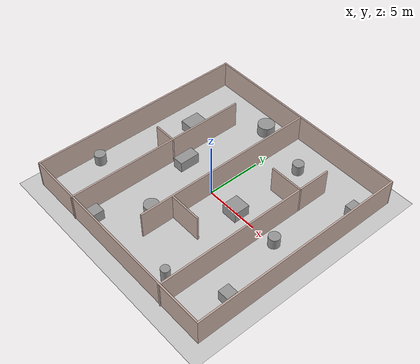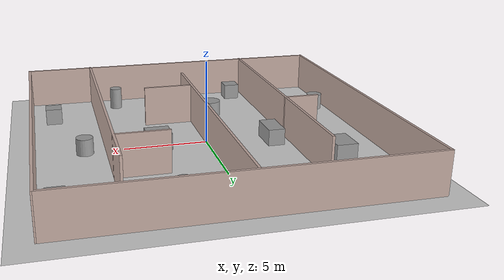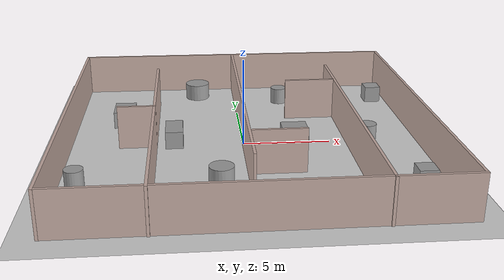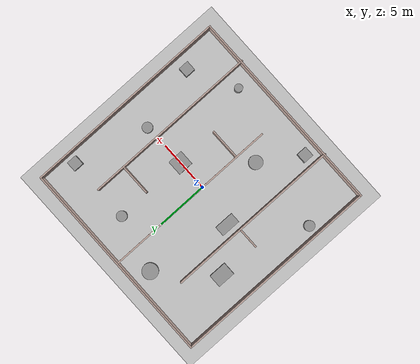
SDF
<sdf version="1.7">
 <world name="default">
  <light name="sun" type="directional">
   <pose>0 0 10 0 -0 0</pose>
   <diffuse>0.8 0.8 0.8 1</diffuse>
   <specular>0.2 0.2 0.2 1</specular>
   <attenuation>
    <range>1000</range>
    <constant>0.9</constant>
    <linear>0.01</linear>
    <quadratic>0.001</quadratic>
   </attenuation>
   <direction>-0.5 0.1 -0.9</direction>
   <spot><inner_angle>0</inner_angle><outer_angle>0</outer_angle><falloff>0</falloff></spot>
  </light>
  <model name="ground_plane">
   <static>1</static>
   <link name="link">
    <collision name="collision">
     <geometry><plane><normal>0 0 1</normal><size>100 100</size></plane></geometry>
     <surface><friction><ode><mu>100</mu><mu2>50</mu2></ode></friction></surface>
    </collision>
    <visual name="visual">
     <cast_shadows>0</cast_shadows>
     <geometry><plane><normal>0 0 1</normal><size>100 100</size></plane></geometry>
     <material>
      <script><uri>file://media/materials/scripts/gazebo.material</uri><name>Gazebo/Grey</name></script>
     </material>
    </visual>
   </link>
  </model>
  <gravity>0 0 -9.8</gravity>
  <magnetic_field>6e-06 2.3e-05 -4.2e-05</magnetic_field>
  <atmosphere type="adiabatic"/>
  <physics type="ode">
   <max_step_size>0.001</max_step_size>
   <real_time_factor>1</real_time_factor>
   <real_time_update_rate>1000</real_time_update_rate>
  </physics>
  <scene><ambient>0.4 0.4 0.4 1</ambient><background>0.7 0.7 0.7 1</background><shadows>1</shadows></scene>
  <spherical_coordinates>
   <surface_model>EARTH_WGS84</surface_model>
   <latitude_deg>0</latitude_deg>
   <longitude_deg>0</longitude_deg>
   <elevation>0</elevation>
   <heading_deg>0</heading_deg>
  </spherical_coordinates>
  <model name="Wall_10_10">
   <pose>0.155497 0.12652 0 0 -0 0</pose>
   <link name="Wall_10">
    <collision name="Wall_10_Collision">
     <geometry><box><size>20.15 0.15 2.5</size></box></geometry>
     <pose>0 0 1.25 0 -0 0</pose>
    </collision>
    <visual name="Wall_10_Visual">
     <pose>0 0 1.25 0 -0 0</pose>
     <geometry><box><size>20.15 0.15 2.5</size></box></geometry>
     <material>
      <script><uri>file://media/materials/scripts/gazebo.material</uri><name>Gazebo/Grey</name></script>
      <ambient>0.760784 0.662745 0.627451 1</ambient>
     </material>
     <meta><layer>0</layer></meta>
    </visual>
    <pose>0 -10.0502 0 0 -0 3.14159</pose>
   </link>
   <link name="Wall_12">
    <collision name="Wall_12_Collision">
     <geometry><box><size>20.15 0.15 2.5</size></box></geometry>
     <pose>0 0 1.25 0 -0 0</pose>
    </collision>
    <visual name="Wall_12_Visual">
     <pose>0 0 1.25 0 -0 0</pose>
     <geometry><box><size>20.15 0.15 2.5</size></box></geometry>
     <material>
      <script><uri>file://media/materials/scripts/gazebo.material</uri><name>Gazebo/Grey</name></script>
      <ambient>0.760784 0.662745 0.627451 1</ambient>
     </material>
     <meta><layer>0</layer></meta>
    </visual>
    <pose>10 -0.050187 0 0 -0 1.5708</pose>
   </link>
   <link name="Wall_13">
    <collision name="Wall_13_Collision">
     <geometry><box><size>20.1502 0.15 2.5</size></box></geometry>
     <pose>0 0 1.25 0 -0 0</pose>
    </collision>
    <visual name="Wall_13_Visual">
     <pose>0 0 1.25 0 -0 0</pose>
     <geometry><box><size>20.1502 0.15 2.5</size></box></geometry>
     <material>
      <script><uri>file://media/materials/scripts/gazebo.material</uri><name>Gazebo/Grey</name></script>
      <ambient>0.760784 0.662745 0.627451 1</ambient>
     </material>
     <meta><layer>0</layer></meta>
    </visual>
    <pose>0 9.99981 0 0 -0 3.13659</pose>
   </link>
   <link name="Wall_7">
    <collision name="Wall_7_Collision">
     <geometry><box><size>20.15 0.15 2.5</size></box></geometry>
     <pose>0 0 1.25 0 -0 0</pose>
    </collision>
    <visual name="Wall_7_Visual">
     <pose>0 0 1.25 0 -0 0</pose>
     <geometry><box><size>20.15 0.15 2.5</size></box></geometry>
     <material>
      <script><uri>file://media/materials/scripts/gazebo.material</uri><name>Gazebo/Grey</name></script>
      <ambient>0.760784 0.662745 0.627451 1</ambient>
     </material>
     <meta><layer>0</layer></meta>
    </visual>
    <pose>-10 -0.050187 0 0 -0 1.5708</pose>
   </link>
   <static>1</static>
  </model>
  <model name="wall_in">
   <pose>-0.5 0 0 0 -0 0</pose>
   <link name="Wall_0">
    <collision name="Wall_0_Collision">
     <geometry><box><size>17.15 0.15 2.5</size></box></geometry>
     <pose>0 0 1.25 0 -0 0</pose>
    </collision>
    <visual name="Wall_0_Visual">
     <pose>0 0 1.25 0 -0 0</pose>
     <geometry><box><size>17.15 0.15 2.5</size></box></geometry>
     <material>
      <script><uri>file://media/materials/scripts/gazebo.material</uri><name>Gazebo/Grey</name></script>
      <ambient>0.760784 0.662745 0.627451 1</ambient>
     </material>
     <meta><layer>0</layer></meta>
    </visual>
    <pose>6.5 -1.5 0 0 -0 1.5708</pose>
   </link>
   <link name="Wall_10">
    <collision name="Wall_10_Collision">
     <geometry><box><size>2.15 0.15 2.5</size></box></geometry>
     <pose>0 0 1.25 0 -0 0</pose>
    </collision>
    <visual name="Wall_10_Visual">
     <pose>0 0 1.25 0 -0 0</pose>
     <geometry><box><size>2.15 0.15 2.5</size></box></geometry>
     <material>
      <script><uri>file://media/materials/scripts/gazebo.material</uri><name>Gazebo/Grey</name></script>
      <ambient>0.760784 0.662745 0.627451 1</ambient>
     </material>
     <meta><layer>0</layer></meta>
    </visual>
    <pose>-5.5 0 0 0 -0 3.14159</pose>
   </link>
   <link name="Wall_2">
    <collision name="Wall_2_Collision">
     <geometry><box><size>17.15 0.15 2.5</size></box></geometry>
     <pose>0 0 1.25 0 -0 0</pose>
    </collision>
    <visual name="Wall_2_Visual">
     <pose>0 0 1.25 0 -0 0</pose>
     <geometry><box><size>17.15 0.15 2.5</size></box></geometry>
     <material>
      <script><uri>file://media/materials/scripts/gazebo.material</uri><name>Gazebo/Grey</name></script>
      <ambient>0.760784 0.662745 0.627451 1</ambient>
     </material>
     <meta><layer>0</layer></meta>
    </visual>
    <pose>0.499999 1.5 0 0 -0 -1.5708</pose>
   </link>
   <link name="Wall_4">
    <collision name="Wall_4_Collision">
     <geometry><box><size>17.15 0.15 2.5</size></box></geometry>
     <pose>0 0 1.25 0 -0 0</pose>
    </collision>
    <visual name="Wall_4_Visual">
     <pose>0 0 1.25 0 -0 0</pose>
     <geometry><box><size>17.15 0.15 2.5</size></box></geometry>
     <material>
      <script><uri>file://media/materials/scripts/gazebo.material</uri><name>Gazebo/Grey</name></script>
      <ambient>0.760784 0.662745 0.627451 1</ambient>
     </material>
     <meta><layer>0</layer></meta>
    </visual>
    <pose>-4.5 -1.5 0 0 -0 1.5708</pose>
   </link>
   <link name="Wall_6">
    <collision name="Wall_6_Collision">
     <geometry><box><size>3.15 0.15 2.5</size></box></geometry>
     <pose>0 0 1.25 0 -0 0</pose>
    </collision>
    <visual name="Wall_6_Visual">
     <pose>0 0 1.25 0 -0 0</pose>
     <geometry><box><size>3.15 0.15 2.5</size></box></geometry>
     <material>
      <script><uri>file://media/materials/scripts/gazebo.material</uri><name>Gazebo/Grey</name></script>
      <ambient>0.760784 0.662745 0.627451 1</ambient>
     </material>
     <meta><layer>0</layer></meta>
    </visual>
    <pose>5 4 0 0 -0 3.14159</pose>
   </link>
   <link name="Wall_8">
    <collision name="Wall_8_Collision">
     <geometry><box><size>3.15 0.15 2.5</size></box></geometry>
     <pose>0 0 1.25 0 -0 0</pose>
    </collision>
    <visual name="Wall_8_Visual">
     <pose>0 0 1.25 0 -0 0</pose>
     <geometry><box><size>3.15 0.15 2.5</size></box></geometry>
     <material>
      <script><uri>file://media/materials/scripts/gazebo.material</uri><name>Gazebo/Grey</name></script>
      <ambient>0.760784 0.662745 0.627451 1</ambient>
     </material>
     <meta><layer>0</layer></meta>
    </visual>
    <pose>2 -4 0 0 -0 0</pose>
   </link>
   <static>1</static>
  </model>
  <model name="Scenarios_2_obstation">
   <link name="link_0">
    <inertial>
     <mass>1</mass>
     <inertia><ixx>0.145833</ixx><ixy>0</ixy><ixz>0</ixz><iyy>0.145833</iyy><iyz>0</iyz><izz>0.125</izz></inertia>
    </inertial>
    <pose>-9.57439 -4.35381 0 0 -0 0</pose>
    <visual name="visual">
     <geometry><cylinder><radius>0.5</radius><length>1</length></cylinder></geometry>
     <material>
      <lighting>1</lighting>
      <script><uri>file://media/materials/scripts/gazebo.material</uri><name>Gazebo/Grey</name></script>
      <shader type="pixel"/>
     </material>
    </visual>
    <collision name="collision">
     <geometry><cylinder><radius>0.5</radius><length>1</length></cylinder></geometry>
     <surface>
      <friction>
       <ode><mu>1</mu><mu2>1</mu2><fdir1>0 0 0</fdir1><slip1>0</slip1><slip2>0</slip2></ode>
       <torsional>
        <coefficient>1</coefficient>
        <patch_radius>0</patch_radius>
        <surface_radius>0</surface_radius>
        <use_patch_radius>1</use_patch_radius>
        <ode><slip>0</slip></ode>
       </torsional>
      </friction>
      <bounce><restitution_coefficient>0</restitution_coefficient><threshold>1e+06</threshold></bounce>
      <contact>
       <collide_without_contact>0</collide_without_contact>
       <collide_without_contact_bitmask>1</collide_without_contact_bitmask>
       <collide_bitmask>1</collide_bitmask>
       <ode>
        <soft_cfm>0</soft_cfm>
        <soft_erp>0.2</soft_erp>
        <kp>1e+13</kp>
        <kd>1</kd>
        <max_vel>0.01</max_vel>
        <min_depth>0</min_depth>
       </ode>
       <bullet>
        <split_impulse>1</split_impulse>
        <split_impulse_penetration_threshold>-0.01</split_impulse_penetration_threshold>
        <soft_cfm>0</soft_cfm>
        <soft_erp>0.2</soft_erp>
        <kp>1e+13</kp>
        <kd>1</kd>
       </bullet>
      </contact>
     </surface>
    </collision>
   </link>
   <link name="link_1">
    <inertial>
     <mass>2.1973</mass>
     <inertia><ixx>0.73531</ixx><ixy>0</ixy><ixz>0</ixz><iyy>0.476267</iyy><iyz>0</iyz><izz>0.84536</izz></inertia>
    </inertial>
    <pose>-7.62731 4.39141 0 0 -0 0</pose>
    <visual name="visual">
     <geometry><box><size>1.26531 1.73658 1</size></box></geometry>
     <material>
      <lighting>1</lighting>
      <script><uri>file://media/materials/scripts/gazebo.material</uri><name>Gazebo/Grey</name></script>
      <shader type="pixel"/>
     </material>
    </visual>
    <collision name="collision">
     <geometry><box><size>1.26531 1.73658 1</size></box></geometry>
     <surface>
      <friction>
       <ode><mu>1</mu><mu2>1</mu2><fdir1>0 0 0</fdir1><slip1>0</slip1><slip2>0</slip2></ode>
       <torsional>
        <coefficient>1</coefficient>
        <patch_radius>0</patch_radius>
        <surface_radius>0</surface_radius>
        <use_patch_radius>1</use_patch_radius>
        <ode><slip>0</slip></ode>
       </torsional>
      </friction>
      <bounce><restitution_coefficient>0</restitution_coefficient><threshold>1e+06</threshold></bounce>
      <contact>
       <collide_without_contact>0</collide_without_contact>
       <collide_without_contact_bitmask>1</collide_without_contact_bitmask>
       <collide_bitmask>1</collide_bitmask>
       <ode>
        <soft_cfm>0</soft_cfm>
        <soft_erp>0.2</soft_erp>
        <kp>1e+13</kp>
        <kd>1</kd>
        <max_vel>0.01</max_vel>
        <min_depth>0</min_depth>
       </ode>
       <bullet>
        <split_impulse>1</split_impulse>
        <split_impulse_penetration_threshold>-0.01</split_impulse_penetration_threshold>
        <soft_cfm>0</soft_cfm>
        <soft_erp>0.2</soft_erp>
        <kp>1e+13</kp>
        <kd>1</kd>
       </bullet>
      </contact>
     </surface>
    </collision>
   </link>
   <link name="link_10">
    <inertial>
     <mass>1</mass>
     <inertia><ixx>0.145833</ixx><ixy>0</ixy><ixz>0</ixz><iyy>0.145833</iyy><iyz>0</iyz><izz>0.125</izz></inertia>
    </inertial>
    <pose>6.62082 0.577287 0 0 -0 0</pose>
    <visual name="visual">
     <geometry><cylinder><radius>0.5</radius><length>1</length></cylinder></geometry>
     <material>
      <lighting>1</lighting>
      <script><uri>file://media/materials/scripts/gazebo.material</uri><name>Gazebo/Grey</name></script>
      <shader type="pixel"/>
     </material>
    </visual>
    <collision name="collision">
     <geometry><cylinder><radius>0.5</radius><length>1</length></cylinder></geometry>
     <surface>
      <friction>
       <ode><mu>1</mu><mu2>1</mu2><fdir1>0 0 0</fdir1><slip1>0</slip1><slip2>0</slip2></ode>
       <torsional>
        <coefficient>1</coefficient>
        <patch_radius>0</patch_radius>
        <surface_radius>0</surface_radius>
        <use_patch_radius>1</use_patch_radius>
        <ode><slip>0</slip></ode>
       </torsional>
      </friction>
      <bounce><restitution_coefficient>0</restitution_coefficient><threshold>1e+06</threshold></bounce>
      <contact>
       <collide_without_contact>0</collide_without_contact>
       <collide_without_contact_bitmask>1</collide_without_contact_bitmask>
       <collide_bitmask>1</collide_bitmask>
       <ode>
        <soft_cfm>0</soft_cfm>
        <soft_erp>0.2</soft_erp>
        <kp>1e+13</kp>
        <kd>1</kd>
        <max_vel>0.01</max_vel>
        <min_depth>0</min_depth>
       </ode>
       <bullet>
        <split_impulse>1</split_impulse>
        <split_impulse_penetration_threshold>-0.01</split_impulse_penetration_threshold>
        <soft_cfm>0</soft_cfm>
        <soft_erp>0.2</soft_erp>
        <kp>1e+13</kp>
        <kd>1</kd>
       </bullet>
      </contact>
     </surface>
    </collision>
   </link>
   <link name="link_11">
    <inertial>
     <mass>1</mass>
     <inertia>
      <ixx>0.166667</ixx>
      <ixy>0</ixy>
      <ixz>0</ixz>
      <iyy>0.166667</iyy>
      <iyz>0</iyz>
      <izz>0.166667</izz>
     </inertia>
    </inertial>
    <pose>8.14526 -5.5192 0 0 -0 0</pose>
    <visual name="visual">
     <geometry><box><size>1 1 1</size></box></geometry>
     <material>
      <lighting>1</lighting>
      <script><uri>file://media/materials/scripts/gazebo.material</uri><name>Gazebo/Grey</name></script>
      <shader type="pixel"/>
     </material>
    </visual>
    <collision name="collision">
     <geometry><box><size>1 1 1</size></box></geometry>
     <surface>
      <friction>
       <ode><mu>1</mu><mu2>1</mu2><fdir1>0 0 0</fdir1><slip1>0</slip1><slip2>0</slip2></ode>
       <torsional>
        <coefficient>1</coefficient>
        <patch_radius>0</patch_radius>
        <surface_radius>0</surface_radius>
        <use_patch_radius>1</use_patch_radius>
        <ode><slip>0</slip></ode>
       </torsional>
      </friction>
      <bounce><restitution_coefficient>0</restitution_coefficient><threshold>1e+06</threshold></bounce>
      <contact>
       <collide_without_contact>0</collide_without_contact>
       <collide_without_contact_bitmask>1</collide_without_contact_bitmask>
       <collide_bitmask>1</collide_bitmask>
       <ode>
        <soft_cfm>0</soft_cfm>
        <soft_erp>0.2</soft_erp>
        <kp>1e+13</kp>
        <kd>1</kd>
        <max_vel>0.01</max_vel>
        <min_depth>0</min_depth>
       </ode>
       <bullet>
        <split_impulse>1</split_impulse>
        <split_impulse_penetration_threshold>-0.01</split_impulse_penetration_threshold>
        <soft_cfm>0</soft_cfm>
        <soft_erp>0.2</soft_erp>
        <kp>1e+13</kp>
        <kd>1</kd>
       </bullet>
      </contact>
     </surface>
    </collision>
   </link>
   <link name="link_2">
    <inertial>
     <mass>2.32622</mass>
     <inertia><ixx>0.53206</ixx><ixy>0</ixy><ixz>0</ixz><iyy>0.53206</iyy><iyz>0</iyz><izz>0.676417</izz></inertia>
    </inertial>
    <pose>-3.10747 8.94875 0 0 -0 0</pose>
    <visual name="visual">
     <geometry><cylinder><radius>0.7626</radius><length>1</length></cylinder></geometry>
     <material>
      <lighting>1</lighting>
      <script><uri>file://media/materials/scripts/gazebo.material</uri><name>Gazebo/Grey</name></script>
      <shader type="pixel"/>
     </material>
    </visual>
    <collision name="collision">
     <geometry><cylinder><radius>0.7626</radius><length>1</length></cylinder></geometry>
     <surface>
      <friction>
       <ode><mu>1</mu><mu2>1</mu2><fdir1>0 0 0</fdir1><slip1>0</slip1><slip2>0</slip2></ode>
       <torsional>
        <coefficient>1</coefficient>
        <patch_radius>0</patch_radius>
        <surface_radius>0</surface_radius>
        <use_patch_radius>1</use_patch_radius>
        <ode><slip>0</slip></ode>
       </torsional>
      </friction>
      <bounce><restitution_coefficient>0</restitution_coefficient><threshold>1e+06</threshold></bounce>
      <contact>
       <collide_without_contact>0</collide_without_contact>
       <collide_without_contact_bitmask>1</collide_without_contact_bitmask>
       <collide_bitmask>1</collide_bitmask>
       <ode>
        <soft_cfm>0</soft_cfm>
        <soft_erp>0.2</soft_erp>
        <kp>1e+13</kp>
        <kd>1</kd>
        <max_vel>0.01</max_vel>
        <min_depth>0</min_depth>
       </ode>
       <bullet>
        <split_impulse>1</split_impulse>
        <split_impulse_penetration_threshold>-0.01</split_impulse_penetration_threshold>
        <soft_cfm>0</soft_cfm>
        <soft_erp>0.2</soft_erp>
        <kp>1e+13</kp>
        <kd>1</kd>
       </bullet>
      </contact>
     </surface>
    </collision>
   </link>
   <link name="link_3">
    <inertial>
     <mass>1.89322</mass>
     <inertia>
      <ixx>0.723258</ixx>
      <ixy>0</ixy>
      <ixz>0</ixz>
      <iyy>0.315537</iyy>
      <iyz>0</iyz>
      <izz>0.723258</izz>
     </inertia>
    </inertial>
    <pose>-4.60017 1.03974 0 0 -0 0</pose>
    <visual name="visual">
     <geometry><box><size>1 1.89322 1</size></box></geometry>
     <material>
      <lighting>1</lighting>
      <script><uri>file://media/materials/scripts/gazebo.material</uri><name>Gazebo/Grey</name></script>
      <shader type="pixel"/>
     </material>
    </visual>
    <collision name="collision">
     <geometry><box><size>1 1.89322 1</size></box></geometry>
     <surface>
      <friction>
       <ode><mu>1</mu><mu2>1</mu2><fdir1>0 0 0</fdir1><slip1>0</slip1><slip2>0</slip2></ode>
       <torsional>
        <coefficient>1</coefficient>
        <patch_radius>0</patch_radius>
        <surface_radius>0</surface_radius>
        <use_patch_radius>1</use_patch_radius>
        <ode><slip>0</slip></ode>
       </torsional>
      </friction>
      <bounce><restitution_coefficient>0</restitution_coefficient><threshold>1e+06</threshold></bounce>
      <contact>
       <collide_without_contact>0</collide_without_contact>
       <collide_without_contact_bitmask>1</collide_without_contact_bitmask>
       <collide_bitmask>1</collide_bitmask>
       <ode>
        <soft_cfm>0</soft_cfm>
        <soft_erp>0.2</soft_erp>
        <kp>1e+13</kp>
        <kd>1</kd>
        <max_vel>0.01</max_vel>
        <min_depth>0</min_depth>
       </ode>
       <bullet>
        <split_impulse>1</split_impulse>
        <split_impulse_penetration_threshold>-0.01</split_impulse_penetration_threshold>
        <soft_cfm>0</soft_cfm>
        <soft_erp>0.2</soft_erp>
        <kp>1e+13</kp>
        <kd>1</kd>
       </bullet>
      </contact>
     </surface>
    </collision>
   </link>
   <link name="link_4">
    <inertial>
     <mass>1.74511</mass>
     <inertia>
      <ixx>0.335762</ixx>
      <ixy>0</ixy>
      <ixz>0</ixz>
      <iyy>0.335762</iyy>
      <iyz>0</iyz>
      <izz>0.380672</izz>
     </inertia>
    </inertial>
    <pose>-2.15416 -4.55413 0 0 -0 0</pose>
    <visual name="visual">
     <geometry><cylinder><radius>0.66051</radius><length>1</length></cylinder></geometry>
     <material>
      <lighting>1</lighting>
      <script><uri>file://media/materials/scripts/gazebo.material</uri><name>Gazebo/Grey</name></script>
      <shader type="pixel"/>
     </material>
    </visual>
    <collision name="collision">
     <geometry><cylinder><radius>0.66051</radius><length>1</length></cylinder></geometry>
     <surface>
      <friction>
       <ode><mu>1</mu><mu2>1</mu2><fdir1>0 0 0</fdir1><slip1>0</slip1><slip2>0</slip2></ode>
       <torsional>
        <coefficient>1</coefficient>
        <patch_radius>0</patch_radius>
        <surface_radius>0</surface_radius>
        <use_patch_radius>1</use_patch_radius>
        <ode><slip>0</slip></ode>
       </torsional>
      </friction>
      <bounce><restitution_coefficient>0</restitution_coefficient><threshold>1e+06</threshold></bounce>
      <contact>
       <collide_without_contact>0</collide_without_contact>
       <collide_without_contact_bitmask>1</collide_without_contact_bitmask>
       <collide_bitmask>1</collide_bitmask>
       <ode>
        <soft_cfm>0</soft_cfm>
        <soft_erp>0.2</soft_erp>
        <kp>1e+13</kp>
        <kd>1</kd>
        <max_vel>0.01</max_vel>
        <min_depth>0</min_depth>
       </ode>
       <bullet>
        <split_impulse>1</split_impulse>
        <split_impulse_penetration_threshold>-0.01</split_impulse_penetration_threshold>
        <soft_cfm>0</soft_cfm>
        <soft_erp>0.2</soft_erp>
        <kp>1e+13</kp>
        <kd>1</kd>
       </bullet>
      </contact>
     </surface>
    </collision>
   </link>
   <link name="link_5">
    <inertial>
     <mass>1</mass>
     <inertia>
      <ixx>0.166667</ixx>
      <ixy>0</ixy>
      <ixz>0</ixz>
      <iyy>0.166667</iyy>
      <iyz>0</iyz>
      <izz>0.166667</izz>
     </inertia>
    </inertial>
    <pose>-4.59655 -8.27838 0 0 -0 0</pose>
    <visual name="visual">
     <geometry><box><size>1 1 1</size></box></geometry>
     <material>
      <lighting>1</lighting>
      <script><uri>file://media/materials/scripts/gazebo.material</uri><name>Gazebo/Grey</name></script>
      <shader type="pixel"/>
     </material>
    </visual>
    <collision name="collision">
     <geometry><box><size>1 1 1</size></box></geometry>
     <surface>
      <friction>
       <ode><mu>1</mu><mu2>1</mu2><fdir1>0 0 0</fdir1><slip1>0</slip1><slip2>0</slip2></ode>
       <torsional>
        <coefficient>1</coefficient>
        <patch_radius>0</patch_radius>
        <surface_radius>0</surface_radius>
        <use_patch_radius>1</use_patch_radius>
        <ode><slip>0</slip></ode>
       </torsional>
      </friction>
      <bounce><restitution_coefficient>0</restitution_coefficient><threshold>1e+06</threshold></bounce>
      <contact>
       <collide_without_contact>0</collide_without_contact>
       <collide_without_contact_bitmask>1</collide_without_contact_bitmask>
       <collide_bitmask>1</collide_bitmask>
       <ode>
        <soft_cfm>0</soft_cfm>
        <soft_erp>0.2</soft_erp>
        <kp>1e+13</kp>
        <kd>1</kd>
        <max_vel>0.01</max_vel>
        <min_depth>0</min_depth>
       </ode>
       <bullet>
        <split_impulse>1</split_impulse>
        <split_impulse_penetration_threshold>-0.01</split_impulse_penetration_threshold>
        <soft_cfm>0</soft_cfm>
        <soft_erp>0.2</soft_erp>
        <kp>1e+13</kp>
        <kd>1</kd>
       </bullet>
      </contact>
     </surface>
    </collision>
   </link>
   <link name="link_6">
    <inertial>
     <mass>1.02224</mass>
     <inertia>
      <ixx>0.285492</ixx>
      <ixy>0</ixy>
      <ixz>0</ixz>
      <iyy>0.285492</iyy>
      <iyz>0</iyz>
      <izz>0.0766797</izz>
     </inertia>
    </inertial>
    <pose>3.80578 -7.82014 0 0 -0 0</pose>
    <visual name="visual">
     <geometry><cylinder><radius>0.387327</radius><length>1.70332</length></cylinder></geometry>
     <material>
      <lighting>1</lighting>
      <script><uri>file://media/materials/scripts/gazebo.material</uri><name>Gazebo/Grey</name></script>
      <shader type="pixel"/>
     </material>
    </visual>
    <collision name="collision">
     <geometry><cylinder><radius>0.387327</radius><length>1.70332</length></cylinder></geometry>
     <surface>
      <friction>
       <ode><mu>1</mu><mu2>1</mu2><fdir1>0 0 0</fdir1><slip1>0</slip1><slip2>0</slip2></ode>
       <torsional>
        <coefficient>1</coefficient>
        <patch_radius>0</patch_radius>
        <surface_radius>0</surface_radius>
        <use_patch_radius>1</use_patch_radius>
        <ode><slip>0</slip></ode>
       </torsional>
      </friction>
      <bounce><restitution_coefficient>0</restitution_coefficient><threshold>1e+06</threshold></bounce>
      <contact>
       <collide_without_contact>0</collide_without_contact>
       <collide_without_contact_bitmask>1</collide_without_contact_bitmask>
       <collide_bitmask>1</collide_bitmask>
       <ode>
        <soft_cfm>0</soft_cfm>
        <soft_erp>0.2</soft_erp>
        <kp>1e+13</kp>
        <kd>1</kd>
        <max_vel>0.01</max_vel>
        <min_depth>0</min_depth>
       </ode>
       <bullet>
        <split_impulse>1</split_impulse>
        <split_impulse_penetration_threshold>-0.01</split_impulse_penetration_threshold>
        <soft_cfm>0</soft_cfm>
        <soft_erp>0.2</soft_erp>
        <kp>1e+13</kp>
        <kd>1</kd>
       </bullet>
      </contact>
     </surface>
    </collision>
   </link>
   <link name="link_7">
    <inertial>
     <mass>2.1777</mass>
     <inertia>
      <ixx>0.577008</ixx>
      <ixy>0</ixy>
      <ixz>0</ixz>
      <iyy>0.576344</iyy>
      <iyz>0</iyz>
      <izz>0.790402</izz>
     </inertia>
    </inertial>
    <pose>2.30338 0.484809 0 0 -0 0</pose>
    <visual name="visual">
     <geometry><box><size>1.47509 1.47633 1</size></box></geometry>
     <material>
      <lighting>1</lighting>
      <script><uri>file://media/materials/scripts/gazebo.material</uri><name>Gazebo/Grey</name></script>
      <shader type="pixel"/>
     </material>
    </visual>
    <collision name="collision">
     <geometry><box><size>1.47509 1.47633 1</size></box></geometry>
     <surface>
      <friction>
       <ode><mu>1</mu><mu2>1</mu2><fdir1>0 0 0</fdir1><slip1>0</slip1><slip2>0</slip2></ode>
       <torsional>
        <coefficient>1</coefficient>
        <patch_radius>0</patch_radius>
        <surface_radius>0</surface_radius>
        <use_patch_radius>1</use_patch_radius>
        <ode><slip>0</slip></ode>
       </torsional>
      </friction>
      <bounce><restitution_coefficient>0</restitution_coefficient><threshold>1e+06</threshold></bounce>
      <contact>
       <collide_without_contact>0</collide_without_contact>
       <collide_without_contact_bitmask>1</collide_without_contact_bitmask>
       <collide_bitmask>1</collide_bitmask>
       <ode>
        <soft_cfm>0</soft_cfm>
        <soft_erp>0.2</soft_erp>
        <kp>1e+13</kp>
        <kd>1</kd>
        <max_vel>0.01</max_vel>
        <min_depth>0</min_depth>
       </ode>
       <bullet>
        <split_impulse>1</split_impulse>
        <split_impulse_penetration_threshold>-0.01</split_impulse_penetration_threshold>
        <soft_cfm>0</soft_cfm>
        <soft_erp>0.2</soft_erp>
        <kp>1e+13</kp>
        <kd>1</kd>
       </bullet>
      </contact>
     </surface>
    </collision>
   </link>
   <link name="link_8">
    <inertial>
     <mass>1</mass>
     <inertia><ixx>0.145833</ixx><ixy>0</ixy><ixz>0</ixz><iyy>0.145833</iyy><iyz>0</iyz><izz>0.125</izz></inertia>
    </inertial>
    <pose>2.25075 7.56848 0 0 -0 0</pose>
    <visual name="visual">
     <geometry><cylinder><radius>0.5</radius><length>1</length></cylinder></geometry>
     <material>
      <lighting>1</lighting>
      <script><uri>file://media/materials/scripts/gazebo.material</uri><name>Gazebo/Grey</name></script>
      <shader type="pixel"/>
     </material>
    </visual>
    <collision name="collision">
     <geometry><cylinder><radius>0.5</radius><length>1</length></cylinder></geometry>
     <surface>
      <friction>
       <ode><mu>1</mu><mu2>1</mu2><fdir1>0 0 0</fdir1><slip1>0</slip1><slip2>0</slip2></ode>
       <torsional>
        <coefficient>1</coefficient>
        <patch_radius>0</patch_radius>
        <surface_radius>0</surface_radius>
        <use_patch_radius>1</use_patch_radius>
        <ode><slip>0</slip></ode>
       </torsional>
      </friction>
      <bounce><restitution_coefficient>0</restitution_coefficient><threshold>1e+06</threshold></bounce>
      <contact>
       <collide_without_contact>0</collide_without_contact>
       <collide_without_contact_bitmask>1</collide_without_contact_bitmask>
       <collide_bitmask>1</collide_bitmask>
       <ode>
        <soft_cfm>0</soft_cfm>
        <soft_erp>0.2</soft_erp>
        <kp>1e+13</kp>
        <kd>1</kd>
        <max_vel>0.01</max_vel>
        <min_depth>0</min_depth>
       </ode>
       <bullet>
        <split_impulse>1</split_impulse>
        <split_impulse_penetration_threshold>-0.01</split_impulse_penetration_threshold>
        <soft_cfm>0</soft_cfm>
        <soft_erp>0.2</soft_erp>
        <kp>1e+13</kp>
        <kd>1</kd>
       </bullet>
      </contact>
     </surface>
    </collision>
   </link>
   <link name="link_9">
    <inertial>
     <mass>1</mass>
     <inertia>
      <ixx>0.166667</ixx>
      <ixy>0</ixy>
      <ixz>0</ixz>
      <iyy>0.166667</iyy>
      <iyz>0</iyz>
      <izz>0.166667</izz>
     </inertia>
    </inertial>
    <pose>8.53406 7.51518 0 0 -0 0</pose>
    <visual name="visual">
     <geometry><box><size>1 1 1</size></box></geometry>
     <material>
      <lighting>1</lighting>
      <script><uri>file://media/materials/scripts/gazebo.material</uri><name>Gazebo/Grey</name></script>
      <shader type="pixel"/>
     </material>
    </visual>
    <collision name="collision">
     <geometry><box><size>1 1 1</size></box></geometry>
     <surface>
      <friction>
       <ode><mu>1</mu><mu2>1</mu2><fdir1>0 0 0</fdir1><slip1>0</slip1><slip2>0</slip2></ode>
       <torsional>
        <coefficient>1</coefficient>
        <patch_radius>0</patch_radius>
        <surface_radius>0</surface_radius>
        <use_patch_radius>1</use_patch_radius>
        <ode><slip>0</slip></ode>
       </torsional>
      </friction>
      <bounce><restitution_coefficient>0</restitution_coefficient><threshold>1e+06</threshold></bounce>
      <contact>
       <collide_without_contact>0</collide_without_contact>
       <collide_without_contact_bitmask>1</collide_without_contact_bitmask>
       <collide_bitmask>1</collide_bitmask>
       <ode>
        <soft_cfm>0</soft_cfm>
        <soft_erp>0.2</soft_erp>
        <kp>1e+13</kp>
        <kd>1</kd>
        <max_vel>0.01</max_vel>
        <min_depth>0</min_depth>
       </ode>
       <bullet>
        <split_impulse>1</split_impulse>
        <split_impulse_penetration_threshold>-0.01</split_impulse_penetration_threshold>
        <soft_cfm>0</soft_cfm>
        <soft_erp>0.2</soft_erp>
        <kp>1e+13</kp>
        <kd>1</kd>
       </bullet>
      </contact>
     </surface>
    </collision>
   </link>
   <static>0</static>
   <pose>0.653559 -0.469664 0.5 0 -0 0</pose>
  </model>
 </world>
</sdf>
